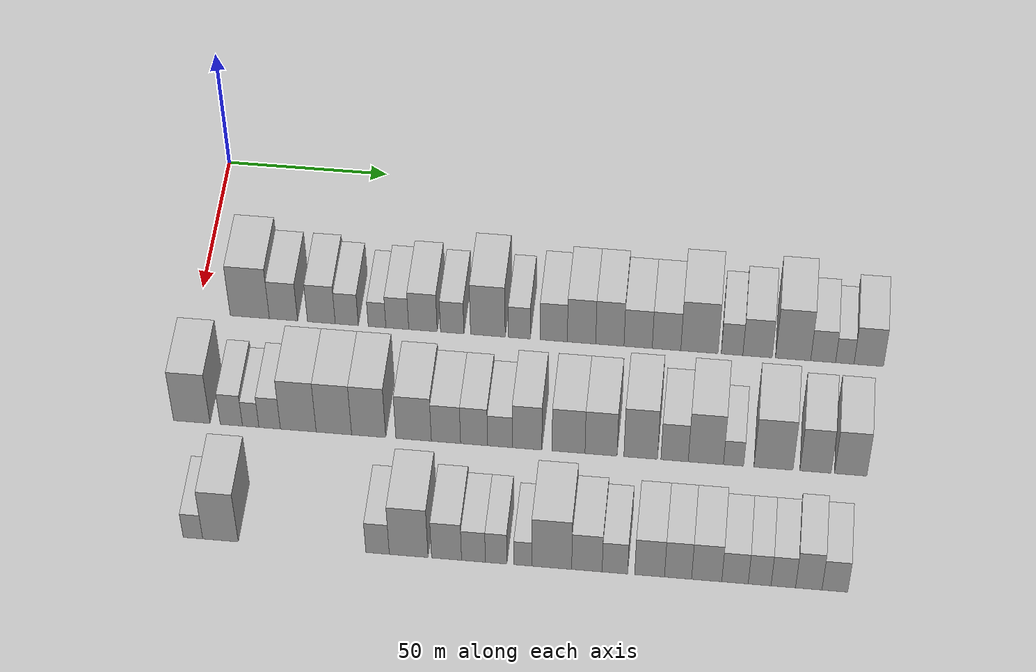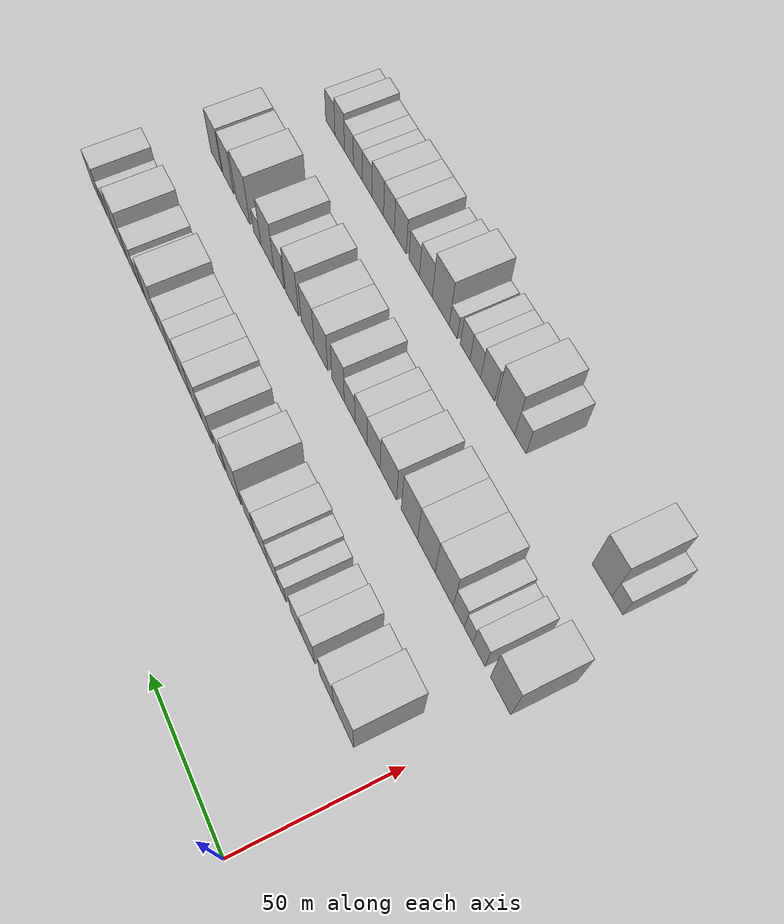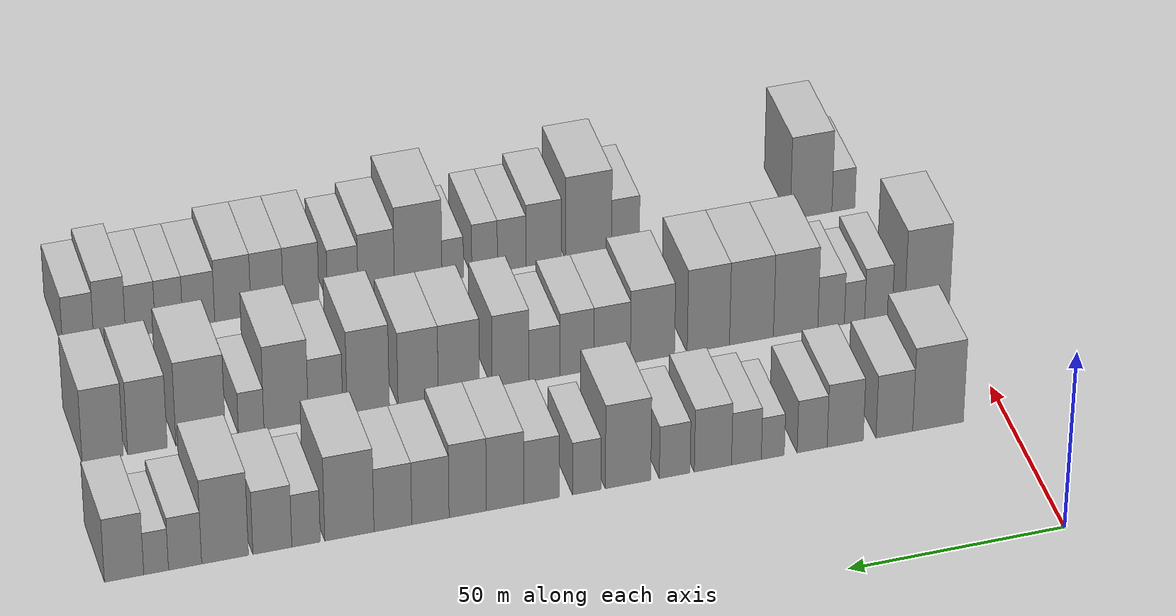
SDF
<sdf version="1.6">
 <world name="default">
  <model name="building_35">
   <static>1</static>
   <pose>50.0000 15.9412 0 0.000000 0.000000 0.000000</pose>
   <link name="link">
    <pose>0 0 12.00 0 0 0</pose>
    <collision name="collision"><geometry><box><size>20.0000 11.9664 24.0000</size></box></geometry></collision>
    <visual name="visual">
     <cast_shadows>0</cast_shadows>
     <geometry><box><size>20.0000 11.9664 24.0000</size></box></geometry>
     <material>
      <script>
       <uri>model://HANNAS_wall/materials/scripts</uri>
       <uri>model://HANNAS_wall/materials/textures</uri>
       <name>vrc/HANNAS_wall</name>
      </script>
     </material>
    </visual>
   </link>
  </model>
  <model name="building_36">
   <static>1</static>
   <pose>50.0000 26.2389 0 0.000000 0.000000 0.000000</pose>
   <link name="link">
    <pose>0 0 9.00 0 0 0</pose>
    <collision name="collision"><geometry><box><size>20.0000 8.6288 18.0000</size></box></geometry></collision>
    <visual name="visual">
     <cast_shadows>0</cast_shadows>
     <geometry><box><size>20.0000 8.6288 18.0000</size></box></geometry>
     <material>
      <script>
       <uri>model://HANNAS_wall/materials/scripts</uri>
       <uri>model://HANNAS_wall/materials/textures</uri>
       <name>vrc/HANNAS_wall</name>
      </script>
     </material>
    </visual>
   </link>
  </model>
  <model name="building_37">
   <static>1</static>
   <pose>50.0000 37.7874 0 0.000000 0.000000 0.000000</pose>
   <link name="link">
    <pose>0 0 9.00 0 0 0</pose>
    <collision name="collision"><geometry><box><size>20.0000 8.4683 18.0000</size></box></geometry></collision>
    <visual name="visual">
     <cast_shadows>0</cast_shadows>
     <geometry><box><size>20.0000 8.4683 18.0000</size></box></geometry>
     <material>
      <script>
       <uri>model://HANNAS_wall/materials/scripts</uri>
       <uri>model://HANNAS_wall/materials/textures</uri>
       <name>vrc/HANNAS_wall</name>
      </script>
     </material>
    </visual>
   </link>
  </model>
  <model name="building_38">
   <static>1</static>
   <pose>50.0000 45.5373 0 0.000000 0.000000 0.000000</pose>
   <link name="link">
    <pose>0 0 7.50 0 0 0</pose>
    <collision name="collision"><geometry><box><size>20.0000 7.0314 15.0000</size></box></geometry></collision>
    <visual name="visual">
     <cast_shadows>0</cast_shadows>
     <geometry><box><size>20.0000 7.0314 15.0000</size></box></geometry>
     <material>
      <script>
       <uri>model://HANNAS_wall/materials/scripts</uri>
       <uri>model://HANNAS_wall/materials/textures</uri>
       <name>vrc/HANNAS_wall</name>
      </script>
     </material>
    </visual>
   </link>
  </model>
  <model name="building_39">
   <static>1</static>
   <pose>50.0000 54.7348 0 0.000000 0.000000 0.000000</pose>
   <link name="link">
    <pose>0 0 6.00 0 0 0</pose>
    <collision name="collision"><geometry><box><size>20.0000 5.3638 12.0000</size></box></geometry></collision>
    <visual name="visual">
     <cast_shadows>0</cast_shadows>
     <geometry><box><size>20.0000 5.3638 12.0000</size></box></geometry>
     <material>
      <script>
       <uri>model://HANNAS_wall/materials/scripts</uri>
       <uri>model://HANNAS_wall/materials/textures</uri>
       <name>vrc/HANNAS_wall</name>
      </script>
     </material>
    </visual>
   </link>
  </model>
  <model name="building_40">
   <static>1</static>
   <pose>50.0000 60.8916 0 0.000000 0.000000 0.000000</pose>
   <link name="link">
    <pose>0 0 7.50 0 0 0</pose>
    <collision name="collision"><geometry><box><size>20.0000 6.9498 15.0000</size></box></geometry></collision>
    <visual name="visual">
     <cast_shadows>0</cast_shadows>
     <geometry><box><size>20.0000 6.9498 15.0000</size></box></geometry>
     <material>
      <script>
       <uri>model://HANNAS_wall/materials/scripts</uri>
       <uri>model://HANNAS_wall/materials/textures</uri>
       <name>vrc/HANNAS_wall</name>
      </script>
     </material>
    </visual>
   </link>
  </model>
  <model name="building_41">
   <static>1</static>
   <pose>50.0000 68.6871 0 0.000000 0.000000 0.000000</pose>
   <link name="link">
    <pose>0 0 9.00 0 0 0</pose>
    <collision name="collision"><geometry><box><size>20.0000 8.6413 18.0000</size></box></geometry></collision>
    <visual name="visual">
     <cast_shadows>0</cast_shadows>
     <geometry><box><size>20.0000 8.6413 18.0000</size></box></geometry>
     <material>
      <script>
       <uri>model://HANNAS_wall/materials/scripts</uri>
       <uri>model://HANNAS_wall/materials/textures</uri>
       <name>vrc/HANNAS_wall</name>
      </script>
     </material>
    </visual>
   </link>
  </model>
  <model name="building_42">
   <static>1</static>
   <pose>50.0000 77.5609 0 0.000000 0.000000 0.000000</pose>
   <link name="link">
    <pose>0 0 7.50 0 0 0</pose>
    <collision name="collision"><geometry><box><size>20.0000 7.1064 15.0000</size></box></geometry></collision>
    <visual name="visual">
     <cast_shadows>0</cast_shadows>
     <geometry><box><size>20.0000 7.1064 15.0000</size></box></geometry>
     <material>
      <script>
       <uri>model://HANNAS_wall/materials/scripts</uri>
       <uri>model://HANNAS_wall/materials/textures</uri>
       <name>vrc/HANNAS_wall</name>
      </script>
     </material>
    </visual>
   </link>
  </model>
  <model name="building_43">
   <static>1</static>
   <pose>50.0000 88.3608 0 0.000000 0.000000 0.000000</pose>
   <link name="link">
    <pose>0 0 12.00 0 0 0</pose>
    <collision name="collision"><geometry><box><size>20.0000 10.4934 24.0000</size></box></geometry></collision>
    <visual name="visual">
     <cast_shadows>0</cast_shadows>
     <geometry><box><size>20.0000 10.4934 24.0000</size></box></geometry>
     <material>
      <script>
       <uri>model://HANNAS_wall/materials/scripts</uri>
       <uri>model://HANNAS_wall/materials/textures</uri>
       <name>vrc/HANNAS_wall</name>
      </script>
     </material>
    </visual>
   </link>
  </model>
  <model name="building_44">
   <static>1</static>
   <pose>50.0000 97.8898 0 0.000000 0.000000 0.000000</pose>
   <link name="link">
    <pose>0 0 7.50 0 0 0</pose>
    <collision name="collision"><geometry><box><size>20.0000 6.5645 15.0000</size></box></geometry></collision>
    <visual name="visual">
     <cast_shadows>0</cast_shadows>
     <geometry><box><size>20.0000 6.5645 15.0000</size></box></geometry>
     <material>
      <script>
       <uri>model://HANNAS_wall/materials/scripts</uri>
       <uri>model://HANNAS_wall/materials/textures</uri>
       <name>vrc/HANNAS_wall</name>
      </script>
     </material>
    </visual>
   </link>
  </model>
  <model name="building_45">
   <static>1</static>
   <pose>50.0000 108.2754 0 0.000000 0.000000 0.000000</pose>
   <link name="link">
    <pose>0 0 9.00 0 0 0</pose>
    <collision name="collision"><geometry><box><size>20.0000 8.2067 18.0000</size></box></geometry></collision>
    <visual name="visual">
     <cast_shadows>0</cast_shadows>
     <geometry><box><size>20.0000 8.2067 18.0000</size></box></geometry>
     <material>
      <script>
       <uri>model://HANNAS_wall/materials/scripts</uri>
       <uri>model://HANNAS_wall/materials/textures</uri>
       <name>vrc/HANNAS_wall</name>
      </script>
     </material>
    </visual>
   </link>
  </model>
  <model name="building_46">
   <static>1</static>
   <pose>50.0000 116.6519 0 0.000000 0.000000 0.000000</pose>
   <link name="link">
    <pose>0 0 10.50 0 0 0</pose>
    <collision name="collision"><geometry><box><size>20.0000 8.5463 21.0000</size></box></geometry></collision>
    <visual name="visual">
     <cast_shadows>0</cast_shadows>
     <geometry><box><size>20.0000 8.5463 21.0000</size></box></geometry>
     <material>
      <script>
       <uri>model://HANNAS_wall/materials/scripts</uri>
       <uri>model://HANNAS_wall/materials/textures</uri>
       <name>vrc/HANNAS_wall</name>
      </script>
     </material>
    </visual>
   </link>
  </model>
  <model name="building_47">
   <static>1</static>
   <pose>50.0000 125.1842 0 0.000000 0.000000 0.000000</pose>
   <link name="link">
    <pose>0 0 10.50 0 0 0</pose>
    <collision name="collision"><geometry><box><size>20.0000 8.5184 21.0000</size></box></geometry></collision>
    <visual name="visual">
     <cast_shadows>0</cast_shadows>
     <geometry><box><size>20.0000 8.5184 21.0000</size></box></geometry>
     <material>
      <script>
       <uri>model://HANNAS_wall/materials/scripts</uri>
       <uri>model://HANNAS_wall/materials/textures</uri>
       <name>vrc/HANNAS_wall</name>
      </script>
     </material>
    </visual>
   </link>
  </model>
  <model name="building_48">
   <static>1</static>
   <pose>50.0000 133.6895 0 0.000000 0.000000 0.000000</pose>
   <link name="link">
    <pose>0 0 9.00 0 0 0</pose>
    <collision name="collision"><geometry><box><size>20.0000 8.4922 18.0000</size></box></geometry></collision>
    <visual name="visual">
     <cast_shadows>0</cast_shadows>
     <geometry><box><size>20.0000 8.4922 18.0000</size></box></geometry>
     <material>
      <script>
       <uri>model://HANNAS_wall/materials/scripts</uri>
       <uri>model://HANNAS_wall/materials/textures</uri>
       <name>vrc/HANNAS_wall</name>
      </script>
     </material>
    </visual>
   </link>
  </model>
  <model name="building_49">
   <static>1</static>
   <pose>50.0000 142.2258 0 0.000000 0.000000 0.000000</pose>
   <link name="link">
    <pose>0 0 9.00 0 0 0</pose>
    <collision name="collision"><geometry><box><size>20.0000 8.5804 18.0000</size></box></geometry></collision>
    <visual name="visual">
     <cast_shadows>0</cast_shadows>
     <geometry><box><size>20.0000 8.5804 18.0000</size></box></geometry>
     <material>
      <script>
       <uri>model://HANNAS_wall/materials/scripts</uri>
       <uri>model://HANNAS_wall/materials/textures</uri>
       <name>vrc/HANNAS_wall</name>
      </script>
     </material>
    </visual>
   </link>
  </model>
  <model name="building_50">
   <static>1</static>
   <pose>50.0000 152.0911 0 0.000000 0.000000 0.000000</pose>
   <link name="link">
    <pose>0 0 12.00 0 0 0</pose>
    <collision name="collision"><geometry><box><size>20.0000 11.1502 24.0000</size></box></geometry></collision>
    <visual name="visual">
     <cast_shadows>0</cast_shadows>
     <geometry><box><size>20.0000 11.1502 24.0000</size></box></geometry>
     <material>
      <script>
       <uri>model://HANNAS_wall/materials/scripts</uri>
       <uri>model://HANNAS_wall/materials/textures</uri>
       <name>vrc/HANNAS_wall</name>
      </script>
     </material>
    </visual>
   </link>
  </model>
  <model name="building_51">
   <static>1</static>
   <pose>50.0000 161.8931 0 0.000000 0.000000 0.000000</pose>
   <link name="link">
    <pose>0 0 7.50 0 0 0</pose>
    <collision name="collision"><geometry><box><size>20.0000 6.4537 15.0000</size></box></geometry></collision>
    <visual name="visual">
     <cast_shadows>0</cast_shadows>
     <geometry><box><size>20.0000 6.4537 15.0000</size></box></geometry>
     <material>
      <script>
       <uri>model://HANNAS_wall/materials/scripts</uri>
       <uri>model://HANNAS_wall/materials/textures</uri>
       <name>vrc/HANNAS_wall</name>
      </script>
     </material>
    </visual>
   </link>
  </model>
  <model name="building_52">
   <static>1</static>
   <pose>50.0000 169.5108 0 0.000000 0.000000 0.000000</pose>
   <link name="link">
    <pose>0 0 9.00 0 0 0</pose>
    <collision name="collision"><geometry><box><size>20.0000 8.7818 18.0000</size></box></geometry></collision>
    <visual name="visual">
     <cast_shadows>0</cast_shadows>
     <geometry><box><size>20.0000 8.7818 18.0000</size></box></geometry>
     <material>
      <script>
       <uri>model://HANNAS_wall/materials/scripts</uri>
       <uri>model://HANNAS_wall/materials/textures</uri>
       <name>vrc/HANNAS_wall</name>
      </script>
     </material>
    </visual>
   </link>
  </model>
  <model name="building_53">
   <static>1</static>
   <pose>50.0000 180.1559 0 0.000000 0.000000 0.000000</pose>
   <link name="link">
    <pose>0 0 12.00 0 0 0</pose>
    <collision name="collision"><geometry><box><size>20.0000 10.5083 24.0000</size></box></geometry></collision>
    <visual name="visual">
     <cast_shadows>0</cast_shadows>
     <geometry><box><size>20.0000 10.5083 24.0000</size></box></geometry>
     <material>
      <script>
       <uri>model://HANNAS_wall/materials/scripts</uri>
       <uri>model://HANNAS_wall/materials/textures</uri>
       <name>vrc/HANNAS_wall</name>
      </script>
     </material>
    </visual>
   </link>
  </model>
  <model name="building_54">
   <static>1</static>
   <pose>50.0000 189.1252 0 0.000000 0.000000 0.000000</pose>
   <link name="link">
    <pose>0 0 7.50 0 0 0</pose>
    <collision name="collision"><geometry><box><size>20.0000 7.4304 15.0000</size></box></geometry></collision>
    <visual name="visual">
     <cast_shadows>0</cast_shadows>
     <geometry><box><size>20.0000 7.4304 15.0000</size></box></geometry>
     <material>
      <script>
       <uri>model://HANNAS_wall/materials/scripts</uri>
       <uri>model://HANNAS_wall/materials/textures</uri>
       <name>vrc/HANNAS_wall</name>
      </script>
     </material>
    </visual>
   </link>
  </model>
  <model name="building_55">
   <static>1</static>
   <pose>50.0000 195.6003 0 0.000000 0.000000 0.000000</pose>
   <link name="link">
    <pose>0 0 6.00 0 0 0</pose>
    <collision name="collision"><geometry><box><size>20.0000 5.5198 12.0000</size></box></geometry></collision>
    <visual name="visual">
     <cast_shadows>0</cast_shadows>
     <geometry><box><size>20.0000 5.5198 12.0000</size></box></geometry>
     <material>
      <script>
       <uri>model://HANNAS_wall/materials/scripts</uri>
       <uri>model://HANNAS_wall/materials/textures</uri>
       <name>vrc/HANNAS_wall</name>
      </script>
     </material>
    </visual>
   </link>
  </model>
  <model name="building_56">
   <static>1</static>
   <pose>50.0000 202.7532 0 0.000000 0.000000 0.000000</pose>
   <link name="link">
    <pose>0 0 9.00 0 0 0</pose>
    <collision name="collision"><geometry><box><size>20.0000 8.7860 18.0000</size></box></geometry></collision>
    <visual name="visual">
     <cast_shadows>0</cast_shadows>
     <geometry><box><size>20.0000 8.7860 18.0000</size></box></geometry>
     <material>
      <script>
       <uri>model://HANNAS_wall/materials/scripts</uri>
       <uri>model://HANNAS_wall/materials/textures</uri>
       <name>vrc/HANNAS_wall</name>
      </script>
     </material>
    </visual>
   </link>
  </model>
  <model name="building_120">
   <static>1</static>
   <pose>90.0000 5.0700 0 0.000000 0.000000 0.000000</pose>
   <link name="link">
    <pose>0 0 12.00 0 0 0</pose>
    <collision name="collision"><geometry><box><size>20.0000 10.8650 24.0000</size></box></geometry></collision>
    <visual name="visual">
     <cast_shadows>0</cast_shadows>
     <geometry><box><size>20.0000 10.8650 24.0000</size></box></geometry>
     <material>
      <script>
       <uri>model://HANNAS_wall/materials/scripts</uri>
       <uri>model://HANNAS_wall/materials/textures</uri>
       <name>vrc/HANNAS_wall</name>
      </script>
     </material>
    </visual>
   </link>
  </model>
  <model name="building_121">
   <static>1</static>
   <pose>90.0000 16.8236 0 0.000000 0.000000 0.000000</pose>
   <link name="link">
    <pose>0 0 7.50 0 0 0</pose>
    <collision name="collision"><geometry><box><size>20.0000 6.6423 15.0000</size></box></geometry></collision>
    <visual name="visual">
     <cast_shadows>0</cast_shadows>
     <geometry><box><size>20.0000 6.6423 15.0000</size></box></geometry>
     <material>
      <script>
       <uri>model://HANNAS_wall/materials/scripts</uri>
       <uri>model://HANNAS_wall/materials/textures</uri>
       <name>vrc/HANNAS_wall</name>
      </script>
     </material>
    </visual>
   </link>
  </model>
  <model name="building_122">
   <static>1</static>
   <pose>90.0000 22.5753 0 0.000000 0.000000 0.000000</pose>
   <link name="link">
    <pose>0 0 6.00 0 0 0</pose>
    <collision name="collision"><geometry><box><size>20.0000 4.8611 12.0000</size></box></geometry></collision>
    <visual name="visual">
     <cast_shadows>0</cast_shadows>
     <geometry><box><size>20.0000 4.8611 12.0000</size></box></geometry>
     <material>
      <script>
       <uri>model://HANNAS_wall/materials/scripts</uri>
       <uri>model://HANNAS_wall/materials/textures</uri>
       <name>vrc/HANNAS_wall</name>
      </script>
     </material>
    </visual>
   </link>
  </model>
  <model name="building_123">
   <static>1</static>
   <pose>90.0000 28.1948 0 0.000000 0.000000 0.000000</pose>
   <link name="link">
    <pose>0 0 7.50 0 0 0</pose>
    <collision name="collision"><geometry><box><size>20.0000 6.3778 15.0000</size></box></geometry></collision>
    <visual name="visual">
     <cast_shadows>0</cast_shadows>
     <geometry><box><size>20.0000 6.3778 15.0000</size></box></geometry>
     <material>
      <script>
       <uri>model://HANNAS_wall/materials/scripts</uri>
       <uri>model://HANNAS_wall/materials/textures</uri>
       <name>vrc/HANNAS_wall</name>
      </script>
     </material>
    </visual>
   </link>
  </model>
  <model name="building_124">
   <static>1</static>
   <pose>90.0000 36.6895 0 0.000000 0.000000 0.000000</pose>
   <link name="link">
    <pose>0 0 12.00 0 0 0</pose>
    <collision name="collision"><geometry><box><size>20.0000 10.6115 24.0000</size></box></geometry></collision>
    <visual name="visual">
     <cast_shadows>0</cast_shadows>
     <geometry><box><size>20.0000 10.6115 24.0000</size></box></geometry>
     <material>
      <script>
       <uri>model://HANNAS_wall/materials/scripts</uri>
       <uri>model://HANNAS_wall/materials/textures</uri>
       <name>vrc/HANNAS_wall</name>
      </script>
     </material>
    </visual>
   </link>
  </model>
  <model name="building_125">
   <static>1</static>
   <pose>90.0000 47.2413 0 0.000000 0.000000 0.000000</pose>
   <link name="link">
    <pose>0 0 12.00 0 0 0</pose>
    <collision name="collision"><geometry><box><size>20.0000 10.4922 24.0000</size></box></geometry></collision>
    <visual name="visual">
     <cast_shadows>0</cast_shadows>
     <geometry><box><size>20.0000 10.4922 24.0000</size></box></geometry>
     <material>
      <script>
       <uri>model://HANNAS_wall/materials/scripts</uri>
       <uri>model://HANNAS_wall/materials/textures</uri>
       <name>vrc/HANNAS_wall</name>
      </script>
     </material>
    </visual>
   </link>
  </model>
  <model name="building_126">
   <static>1</static>
   <pose>90.0000 57.5230 0 0.000000 0.000000 0.000000</pose>
   <link name="link">
    <pose>0 0 12.00 0 0 0</pose>
    <collision name="collision"><geometry><box><size>20.0000 10.0712 24.0000</size></box></geometry></collision>
    <visual name="visual">
     <cast_shadows>0</cast_shadows>
     <geometry><box><size>20.0000 10.0712 24.0000</size></box></geometry>
     <material>
      <script>
       <uri>model://HANNAS_wall/materials/scripts</uri>
       <uri>model://HANNAS_wall/materials/textures</uri>
       <name>vrc/HANNAS_wall</name>
      </script>
     </material>
    </visual>
   </link>
  </model>
  <model name="building_127">
   <static>1</static>
   <pose>90.0000 70.7903 0 0.000000 0.000000 0.000000</pose>
   <link name="link">
    <pose>0 0 10.50 0 0 0</pose>
    <collision name="collision"><geometry><box><size>20.0000 10.4634 21.0000</size></box></geometry></collision>
    <visual name="visual">
     <cast_shadows>0</cast_shadows>
     <geometry><box><size>20.0000 10.4634 21.0000</size></box></geometry>
     <material>
      <script>
       <uri>model://HANNAS_wall/materials/scripts</uri>
       <uri>model://HANNAS_wall/materials/textures</uri>
       <name>vrc/HANNAS_wall</name>
      </script>
     </material>
    </visual>
   </link>
  </model>
  <model name="building_128">
   <static>1</static>
   <pose>90.0000 80.3263 0 0.000000 0.000000 0.000000</pose>
   <link name="link">
    <pose>0 0 9.00 0 0 0</pose>
    <collision name="collision"><geometry><box><size>20.0000 8.6085 18.0000</size></box></geometry></collision>
    <visual name="visual">
     <cast_shadows>0</cast_shadows>
     <geometry><box><size>20.0000 8.6085 18.0000</size></box></geometry>
     <material>
      <script>
       <uri>model://HANNAS_wall/materials/scripts</uri>
       <uri>model://HANNAS_wall/materials/textures</uri>
       <name>vrc/HANNAS_wall</name>
      </script>
     </material>
    </visual>
   </link>
  </model>
  <model name="building_129">
   <static>1</static>
   <pose>90.0000 88.6130 0 0.000000 0.000000 0.000000</pose>
   <link name="link">
    <pose>0 0 9.00 0 0 0</pose>
    <collision name="collision"><geometry><box><size>20.0000 7.9649 18.0000</size></box></geometry></collision>
    <visual name="visual">
     <cast_shadows>0</cast_shadows>
     <geometry><box><size>20.0000 7.9649 18.0000</size></box></geometry>
     <material>
      <script>
       <uri>model://HANNAS_wall/materials/scripts</uri>
       <uri>model://HANNAS_wall/materials/textures</uri>
       <name>vrc/HANNAS_wall</name>
      </script>
     </material>
    </visual>
   </link>
  </model>
  <model name="building_130">
   <static>1</static>
   <pose>90.0000 96.2385 0 0.000000 0.000000 0.000000</pose>
   <link name="link">
    <pose>0 0 7.50 0 0 0</pose>
    <collision name="collision"><geometry><box><size>20.0000 7.2863 15.0000</size></box></geometry></collision>
    <visual name="visual">
     <cast_shadows>0</cast_shadows>
     <geometry><box><size>20.0000 7.2863 15.0000</size></box></geometry>
     <material>
      <script>
       <uri>model://HANNAS_wall/materials/scripts</uri>
       <uri>model://HANNAS_wall/materials/textures</uri>
       <name>vrc/HANNAS_wall</name>
      </script>
     </material>
    </visual>
   </link>
  </model>
  <model name="building_131">
   <static>1</static>
   <pose>90.0000 104.1979 0 0.000000 0.000000 0.000000</pose>
   <link name="link">
    <pose>0 0 10.50 0 0 0</pose>
    <collision name="collision"><geometry><box><size>20.0000 8.6326 21.0000</size></box></geometry></collision>
    <visual name="visual">
     <cast_shadows>0</cast_shadows>
     <geometry><box><size>20.0000 8.6326 21.0000</size></box></geometry>
     <material>
      <script>
       <uri>model://HANNAS_wall/materials/scripts</uri>
       <uri>model://HANNAS_wall/materials/textures</uri>
       <name>vrc/HANNAS_wall</name>
      </script>
     </material>
    </visual>
   </link>
  </model>
  <model name="building_132">
   <static>1</static>
   <pose>90.0000 116.3301 0 0.000000 0.000000 0.000000</pose>
   <link name="link">
    <pose>0 0 10.50 0 0 0</pose>
    <collision name="collision"><geometry><box><size>20.0000 9.6318 21.0000</size></box></geometry></collision>
    <visual name="visual">
     <cast_shadows>0</cast_shadows>
     <geometry><box><size>20.0000 9.6318 21.0000</size></box></geometry>
     <material>
      <script>
       <uri>model://HANNAS_wall/materials/scripts</uri>
       <uri>model://HANNAS_wall/materials/textures</uri>
       <name>vrc/HANNAS_wall</name>
      </script>
     </material>
    </visual>
   </link>
  </model>
  <model name="building_133">
   <static>1</static>
   <pose>90.0000 125.8318 0 0.000000 0.000000 0.000000</pose>
   <link name="link">
    <pose>0 0 10.50 0 0 0</pose>
    <collision name="collision"><geometry><box><size>20.0000 9.3715 21.0000</size></box></geometry></collision>
    <visual name="visual">
     <cast_shadows>0</cast_shadows>
     <geometry><box><size>20.0000 9.3715 21.0000</size></box></geometry>
     <material>
      <script>
       <uri>model://HANNAS_wall/materials/scripts</uri>
       <uri>model://HANNAS_wall/materials/textures</uri>
       <name>vrc/HANNAS_wall</name>
      </script>
     </material>
    </visual>
   </link>
  </model>
  <model name="building_134">
   <static>1</static>
   <pose>90.0000 137.4226 0 0.000000 0.000000 0.000000</pose>
   <link name="link">
    <pose>0 0 12.00 0 0 0</pose>
    <collision name="collision"><geometry><box><size>20.0000 9.8100 24.0000</size></box></geometry></collision>
    <visual name="visual">
     <cast_shadows>0</cast_shadows>
     <geometry><box><size>20.0000 9.8100 24.0000</size></box></geometry>
     <material>
      <script>
       <uri>model://HANNAS_wall/materials/scripts</uri>
       <uri>model://HANNAS_wall/materials/textures</uri>
       <name>vrc/HANNAS_wall</name>
      </script>
     </material>
    </visual>
   </link>
  </model>
  <model name="building_135">
   <static>1</static>
   <pose>90.0000 147.3107 0 0.000000 0.000000 0.000000</pose>
   <link name="link">
    <pose>0 0 9.00 0 0 0</pose>
    <collision name="collision"><geometry><box><size>20.0000 7.9663 18.0000</size></box></geometry></collision>
    <visual name="visual">
     <cast_shadows>0</cast_shadows>
     <geometry><box><size>20.0000 7.9663 18.0000</size></box></geometry>
     <material>
      <script>
       <uri>model://HANNAS_wall/materials/scripts</uri>
       <uri>model://HANNAS_wall/materials/textures</uri>
       <name>vrc/HANNAS_wall</name>
      </script>
     </material>
    </visual>
   </link>
  </model>
  <model name="building_136">
   <static>1</static>
   <pose>90.0000 156.4259 0 0.000000 0.000000 0.000000</pose>
   <link name="link">
    <pose>0 0 12.00 0 0 0</pose>
    <collision name="collision"><geometry><box><size>20.0000 10.2640 24.0000</size></box></geometry></collision>
    <visual name="visual">
     <cast_shadows>0</cast_shadows>
     <geometry><box><size>20.0000 10.2640 24.0000</size></box></geometry>
     <material>
      <script>
       <uri>model://HANNAS_wall/materials/scripts</uri>
       <uri>model://HANNAS_wall/materials/textures</uri>
       <name>vrc/HANNAS_wall</name>
      </script>
     </material>
    </visual>
   </link>
  </model>
  <model name="building_137">
   <static>1</static>
   <pose>90.0000 164.4988 0 0.000000 0.000000 0.000000</pose>
   <link name="link">
    <pose>0 0 6.00 0 0 0</pose>
    <collision name="collision"><geometry><box><size>20.0000 5.8819 12.0000</size></box></geometry></collision>
    <visual name="visual">
     <cast_shadows>0</cast_shadows>
     <geometry><box><size>20.0000 5.8819 12.0000</size></box></geometry>
     <material>
      <script>
       <uri>model://HANNAS_wall/materials/scripts</uri>
       <uri>model://HANNAS_wall/materials/textures</uri>
       <name>vrc/HANNAS_wall</name>
      </script>
     </material>
    </visual>
   </link>
  </model>
  <model name="building_138">
   <static>1</static>
   <pose>90.0000 176.1143 0 0.000000 0.000000 0.000000</pose>
   <link name="link">
    <pose>0 0 12.00 0 0 0</pose>
    <collision name="collision"><geometry><box><size>20.0000 11.3491 24.0000</size></box></geometry></collision>
    <visual name="visual">
     <cast_shadows>0</cast_shadows>
     <geometry><box><size>20.0000 11.3491 24.0000</size></box></geometry>
     <material>
      <script>
       <uri>model://HANNAS_wall/materials/scripts</uri>
       <uri>model://HANNAS_wall/materials/textures</uri>
       <name>vrc/HANNAS_wall</name>
      </script>
     </material>
    </visual>
   </link>
  </model>
  <model name="building_139">
   <static>1</static>
   <pose>90.0000 188.3137 0 0.000000 0.000000 0.000000</pose>
   <link name="link">
    <pose>0 0 10.50 0 0 0</pose>
    <collision name="collision"><geometry><box><size>20.0000 9.0496 21.0000</size></box></geometry></collision>
    <visual name="visual">
     <cast_shadows>0</cast_shadows>
     <geometry><box><size>20.0000 9.0496 21.0000</size></box></geometry>
     <material>
      <script>
       <uri>model://HANNAS_wall/materials/scripts</uri>
       <uri>model://HANNAS_wall/materials/textures</uri>
       <name>vrc/HANNAS_wall</name>
      </script>
     </material>
    </visual>
   </link>
  </model>
  <model name="building_140">
   <static>1</static>
   <pose>90.0000 198.5256 0 0.000000 0.000000 0.000000</pose>
   <link name="link">
    <pose>0 0 10.50 0 0 0</pose>
    <collision name="collision"><geometry><box><size>20.0000 9.3743 21.0000</size></box></geometry></collision>
    <visual name="visual">
     <cast_shadows>0</cast_shadows>
     <geometry><box><size>20.0000 9.3743 21.0000</size></box></geometry>
     <material>
      <script>
       <uri>model://HANNAS_wall/materials/scripts</uri>
       <uri>model://HANNAS_wall/materials/textures</uri>
       <name>vrc/HANNAS_wall</name>
      </script>
     </material>
    </visual>
   </link>
  </model>
  <model name="building_207">
   <static>1</static>
   <pose>130.0000 12.2856 0 0.000000 0.000000 0.000000</pose>
   <link name="link">
    <pose>0 0 6.00 0 0 0</pose>
    <collision name="collision"><geometry><box><size>20.0000 5.6403 12.0000</size></box></geometry></collision>
    <visual name="visual">
     <cast_shadows>0</cast_shadows>
     <geometry><box><size>20.0000 5.6403 12.0000</size></box></geometry>
     <material>
      <script>
       <uri>model://HANNAS_wall/materials/scripts</uri>
       <uri>model://HANNAS_wall/materials/textures</uri>
       <name>vrc/HANNAS_wall</name>
      </script>
     </material>
    </visual>
   </link>
  </model>
  <model name="building_208">
   <static>1</static>
   <pose>130.0000 20.2268 0 0.000000 0.000000 0.000000</pose>
   <link name="link">
    <pose>0 0 12.00 0 0 0</pose>
    <collision name="collision"><geometry><box><size>20.0000 10.2422 24.0000</size></box></geometry></collision>
    <visual name="visual">
     <cast_shadows>0</cast_shadows>
     <geometry><box><size>20.0000 10.2422 24.0000</size></box></geometry>
     <material>
      <script>
       <uri>model://HANNAS_wall/materials/scripts</uri>
       <uri>model://HANNAS_wall/materials/textures</uri>
       <name>vrc/HANNAS_wall</name>
      </script>
     </material>
    </visual>
   </link>
  </model>
  <model name="building_209">
   <static>1</static>
   <pose>130.0000 65.4042 0 0.000000 0.000000 0.000000</pose>
   <link name="link">
    <pose>0 0 7.50 0 0 0</pose>
    <collision name="collision"><geometry><box><size>20.0000 6.7042 15.0000</size></box></geometry></collision>
    <visual name="visual">
     <cast_shadows>0</cast_shadows>
     <geometry><box><size>20.0000 6.7042 15.0000</size></box></geometry>
     <material>
      <script>
       <uri>model://HANNAS_wall/materials/scripts</uri>
       <uri>model://HANNAS_wall/materials/textures</uri>
       <name>vrc/HANNAS_wall</name>
      </script>
     </material>
    </visual>
   </link>
  </model>
  <model name="building_210">
   <static>1</static>
   <pose>130.0000 74.3043 0 0.000000 0.000000 0.000000</pose>
   <link name="link">
    <pose>0 0 12.00 0 0 0</pose>
    <collision name="collision"><geometry><box><size>20.0000 11.0960 24.0000</size></box></geometry></collision>
    <visual name="visual">
     <cast_shadows>0</cast_shadows>
     <geometry><box><size>20.0000 11.0960 24.0000</size></box></geometry>
     <material>
      <script>
       <uri>model://HANNAS_wall/materials/scripts</uri>
       <uri>model://HANNAS_wall/materials/textures</uri>
       <name>vrc/HANNAS_wall</name>
      </script>
     </material>
    </visual>
   </link>
  </model>
  <model name="building_211">
   <static>1</static>
   <pose>130.0000 85.1361 0 0.000000 0.000000 0.000000</pose>
   <link name="link">
    <pose>0 0 9.00 0 0 0</pose>
    <collision name="collision"><geometry><box><size>20.0000 8.5677 18.0000</size></box></geometry></collision>
    <visual name="visual">
     <cast_shadows>0</cast_shadows>
     <geometry><box><size>20.0000 8.5677 18.0000</size></box></geometry>
     <material>
      <script>
       <uri>model://HANNAS_wall/materials/scripts</uri>
       <uri>model://HANNAS_wall/materials/textures</uri>
       <name>vrc/HANNAS_wall</name>
      </script>
     </material>
    </visual>
   </link>
  </model>
  <model name="building_212">
   <static>1</static>
   <pose>130.0000 92.8265 0 0.000000 0.000000 0.000000</pose>
   <link name="link">
    <pose>0 0 7.50 0 0 0</pose>
    <collision name="collision"><geometry><box><size>20.0000 6.8131 15.0000</size></box></geometry></collision>
    <visual name="visual">
     <cast_shadows>0</cast_shadows>
     <geometry><box><size>20.0000 6.8131 15.0000</size></box></geometry>
     <material>
      <script>
       <uri>model://HANNAS_wall/materials/scripts</uri>
       <uri>model://HANNAS_wall/materials/textures</uri>
       <name>vrc/HANNAS_wall</name>
      </script>
     </material>
    </visual>
   </link>
  </model>
  <model name="building_213">
   <static>1</static>
   <pose>130.0000 99.2936 0 0.000000 0.000000 0.000000</pose>
   <link name="link">
    <pose>0 0 7.50 0 0 0</pose>
    <collision name="collision"><geometry><box><size>20.0000 6.1211 15.0000</size></box></geometry></collision>
    <visual name="visual">
     <cast_shadows>0</cast_shadows>
     <geometry><box><size>20.0000 6.1211 15.0000</size></box></geometry>
     <material>
      <script>
       <uri>model://HANNAS_wall/materials/scripts</uri>
       <uri>model://HANNAS_wall/materials/textures</uri>
       <name>vrc/HANNAS_wall</name>
      </script>
     </material>
    </visual>
   </link>
  </model>
  <model name="building_214">
   <static>1</static>
   <pose>130.0000 106.9113 0 0.000000 0.000000 0.000000</pose>
   <link name="link">
    <pose>0 0 6.00 0 0 0</pose>
    <collision name="collision"><geometry><box><size>20.0000 5.1144 12.0000</size></box></geometry></collision>
    <visual name="visual">
     <cast_shadows>0</cast_shadows>
     <geometry><box><size>20.0000 5.1144 12.0000</size></box></geometry>
     <material>
      <script>
       <uri>model://HANNAS_wall/materials/scripts</uri>
       <uri>model://HANNAS_wall/materials/textures</uri>
       <name>vrc/HANNAS_wall</name>
      </script>
     </material>
    </visual>
   </link>
  </model>
  <model name="building_215">
   <static>1</static>
   <pose>130.0000 115.1324 0 0.000000 0.000000 0.000000</pose>
   <link name="link">
    <pose>0 0 12.00 0 0 0</pose>
    <collision name="collision"><geometry><box><size>20.0000 11.3277 24.0000</size></box></geometry></collision>
    <visual name="visual">
     <cast_shadows>0</cast_shadows>
     <geometry><box><size>20.0000 11.3277 24.0000</size></box></geometry>
     <material>
      <script>
       <uri>model://HANNAS_wall/materials/scripts</uri>
       <uri>model://HANNAS_wall/materials/textures</uri>
       <name>vrc/HANNAS_wall</name>
      </script>
     </material>
    </visual>
   </link>
  </model>
  <model name="building_216">
   <static>1</static>
   <pose>130.0000 125.1248 0 0.000000 0.000000 0.000000</pose>
   <link name="link">
    <pose>0 0 9.00 0 0 0</pose>
    <collision name="collision"><geometry><box><size>20.0000 8.6571 18.0000</size></box></geometry></collision>
    <visual name="visual">
     <cast_shadows>0</cast_shadows>
     <geometry><box><size>20.0000 8.6571 18.0000</size></box></geometry>
     <material>
      <script>
       <uri>model://HANNAS_wall/materials/scripts</uri>
       <uri>model://HANNAS_wall/materials/textures</uri>
       <name>vrc/HANNAS_wall</name>
      </script>
     </material>
    </visual>
   </link>
  </model>
  <model name="building_217">
   <static>1</static>
   <pose>130.0000 133.0703 0 0.000000 0.000000 0.000000</pose>
   <link name="link">
    <pose>0 0 7.50 0 0 0</pose>
    <collision name="collision"><geometry><box><size>20.0000 7.2340 15.0000</size></box></geometry></collision>
    <visual name="visual">
     <cast_shadows>0</cast_shadows>
     <geometry><box><size>20.0000 7.2340 15.0000</size></box></geometry>
     <material>
      <script>
       <uri>model://HANNAS_wall/materials/scripts</uri>
       <uri>model://HANNAS_wall/materials/textures</uri>
       <name>vrc/HANNAS_wall</name>
      </script>
     </material>
    </visual>
   </link>
  </model>
  <model name="building_218">
   <static>1</static>
   <pose>130.0000 142.9153 0 0.000000 0.000000 0.000000</pose>
   <link name="link">
    <pose>0 0 9.00 0 0 0</pose>
    <collision name="collision"><geometry><box><size>20.0000 8.4559 18.0000</size></box></geometry></collision>
    <visual name="visual">
     <cast_shadows>0</cast_shadows>
     <geometry><box><size>20.0000 8.4559 18.0000</size></box></geometry>
     <material>
      <script>
       <uri>model://HANNAS_wall/materials/scripts</uri>
       <uri>model://HANNAS_wall/materials/textures</uri>
       <name>vrc/HANNAS_wall</name>
      </script>
     </material>
    </visual>
   </link>
  </model>
  <model name="building_219">
   <static>1</static>
   <pose>130.0000 150.9673 0 0.000000 0.000000 0.000000</pose>
   <link name="link">
    <pose>0 0 9.00 0 0 0</pose>
    <collision name="collision"><geometry><box><size>20.0000 7.6480 18.0000</size></box></geometry></collision>
    <visual name="visual">
     <cast_shadows>0</cast_shadows>
     <geometry><box><size>20.0000 7.6480 18.0000</size></box></geometry>
     <material>
      <script>
       <uri>model://HANNAS_wall/materials/scripts</uri>
       <uri>model://HANNAS_wall/materials/textures</uri>
       <name>vrc/HANNAS_wall</name>
      </script>
     </material>
    </visual>
   </link>
  </model>
  <model name="building_220">
   <static>1</static>
   <pose>130.0000 159.0610 0 0.000000 0.000000 0.000000</pose>
   <link name="link">
    <pose>0 0 9.00 0 0 0</pose>
    <collision name="collision"><geometry><box><size>20.0000 8.5395 18.0000</size></box></geometry></collision>
    <visual name="visual">
     <cast_shadows>0</cast_shadows>
     <geometry><box><size>20.0000 8.5395 18.0000</size></box></geometry>
     <material>
      <script>
       <uri>model://HANNAS_wall/materials/scripts</uri>
       <uri>model://HANNAS_wall/materials/textures</uri>
       <name>vrc/HANNAS_wall</name>
      </script>
     </material>
    </visual>
   </link>
  </model>
  <model name="building_221">
   <static>1</static>
   <pose>130.0000 167.0696 0 0.000000 0.000000 0.000000</pose>
   <link name="link">
    <pose>0 0 7.50 0 0 0</pose>
    <collision name="collision"><geometry><box><size>20.0000 7.4778 15.0000</size></box></geometry></collision>
    <visual name="visual">
     <cast_shadows>0</cast_shadows>
     <geometry><box><size>20.0000 7.4778 15.0000</size></box></geometry>
     <material>
      <script>
       <uri>model://HANNAS_wall/materials/scripts</uri>
       <uri>model://HANNAS_wall/materials/textures</uri>
       <name>vrc/HANNAS_wall</name>
      </script>
     </material>
    </visual>
   </link>
  </model>
  <model name="building_222">
   <static>1</static>
   <pose>130.0000 174.0285 0 0.000000 0.000000 0.000000</pose>
   <link name="link">
    <pose>0 0 7.50 0 0 0</pose>
    <collision name="collision"><geometry><box><size>20.0000 6.4399 15.0000</size></box></geometry></collision>
    <visual name="visual">
     <cast_shadows>0</cast_shadows>
     <geometry><box><size>20.0000 6.4399 15.0000</size></box></geometry>
     <material>
      <script>
       <uri>model://HANNAS_wall/materials/scripts</uri>
       <uri>model://HANNAS_wall/materials/textures</uri>
       <name>vrc/HANNAS_wall</name>
      </script>
     </material>
    </visual>
   </link>
  </model>
  <model name="building_223">
   <static>1</static>
   <pose>130.0000 180.7086 0 0.000000 0.000000 0.000000</pose>
   <link name="link">
    <pose>0 0 7.50 0 0 0</pose>
    <collision name="collision"><geometry><box><size>20.0000 6.9204 15.0000</size></box></geometry></collision>
    <visual name="visual">
     <cast_shadows>0</cast_shadows>
     <geometry><box><size>20.0000 6.9204 15.0000</size></box></geometry>
     <material>
      <script>
       <uri>model://HANNAS_wall/materials/scripts</uri>
       <uri>model://HANNAS_wall/materials/textures</uri>
       <name>vrc/HANNAS_wall</name>
      </script>
     </material>
    </visual>
   </link>
  </model>
  <model name="building_224">
   <static>1</static>
   <pose>130.0000 187.8837 0 0.000000 0.000000 0.000000</pose>
   <link name="link">
    <pose>0 0 9.00 0 0 0</pose>
    <collision name="collision"><geometry><box><size>20.0000 7.4297 18.0000</size></box></geometry></collision>
    <visual name="visual">
     <cast_shadows>0</cast_shadows>
     <geometry><box><size>20.0000 7.4297 18.0000</size></box></geometry>
     <material>
      <script>
       <uri>model://HANNAS_wall/materials/scripts</uri>
       <uri>model://HANNAS_wall/materials/textures</uri>
       <name>vrc/HANNAS_wall</name>
      </script>
     </material>
    </visual>
   </link>
  </model>
  <model name="building_225">
   <static>1</static>
   <pose>130.0000 195.2244 0 0.000000 0.000000 0.000000</pose>
   <link name="link">
    <pose>0 0 7.50 0 0 0</pose>
    <collision name="collision"><geometry><box><size>20.0000 7.2517 15.0000</size></box></geometry></collision>
    <visual name="visual">
     <cast_shadows>0</cast_shadows>
     <geometry><box><size>20.0000 7.2517 15.0000</size></box></geometry>
     <material>
      <script>
       <uri>model://HANNAS_wall/materials/scripts</uri>
       <uri>model://HANNAS_wall/materials/textures</uri>
       <name>vrc/HANNAS_wall</name>
      </script>
     </material>
    </visual>
   </link>
  </model>
 </world>
</sdf>
